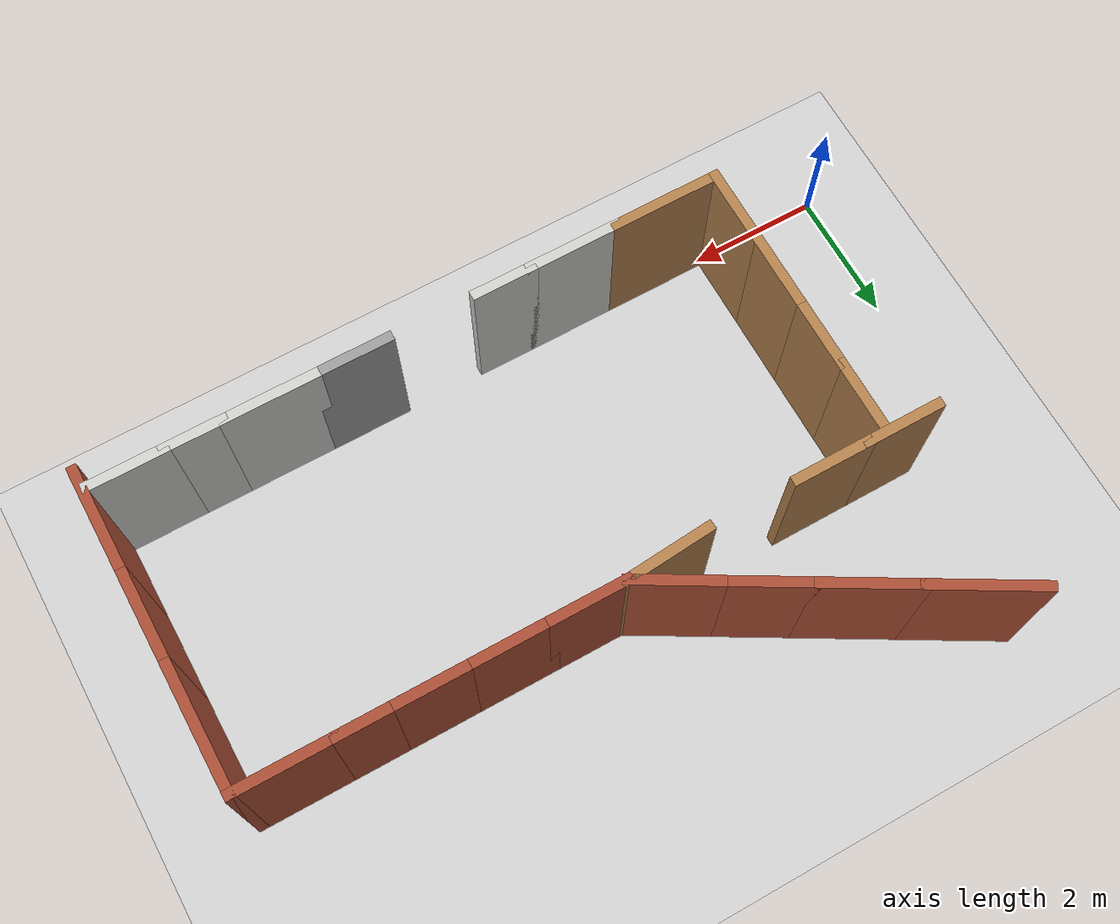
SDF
<sdf version="1.7">
 <world name="default">
  <model name="ground_plane">
   <static>1</static>
   <link name="link">
    <collision name="collision">
     <geometry><plane><normal>0 0 1</normal><size>100 100</size></plane></geometry>
     <surface>
      <contact><collide_bitmask>65535</collide_bitmask></contact>
      <friction><ode><mu>100</mu><mu2>50</mu2></ode></friction>
     </surface>
    </collision>
    <visual name="visual">
     <cast_shadows>0</cast_shadows>
     <geometry><plane><normal>0 0 1</normal><size>100 100</size></plane></geometry>
     <material>
      <script><uri>file://media/materials/scripts/gazebo.material</uri><name>Gazebo/Grey</name></script>
     </material>
    </visual>
   </link>
  </model>
  <model name="Building">
   <link name="Wall_100">
    <pose>10.6129 -0.475005 0 0 -0 0</pose>
    <visual name="Wall_100_Visual">
     <pose>0 0 1.25 0 -0 0</pose>
     <geometry><box><size>1.25 0.15 2.5</size></box></geometry>
     <material>
      <script><uri>file://media/materials/scripts/gazebo.material</uri><name>Gazebo/CeilingTiled</name></script>
      <ambient>1 1 1 1</ambient>
      <shader type="pixel"/>
     </material>
     <meta><layer>0</layer></meta>
    </visual>
    <collision name="Wall_100_Collision">
     <pose>0 0 1.25 0 -0 0</pose>
     <geometry><box><size>1.25 0.15 2.5</size></box></geometry>
     <surface>
      <friction>
       <ode><mu>1</mu><mu2>1</mu2><fdir1>0 0 0</fdir1><slip1>0</slip1><slip2>0</slip2></ode>
       <torsional>
        <coefficient>1</coefficient>
        <patch_radius>0</patch_radius>
        <surface_radius>0</surface_radius>
        <use_patch_radius>1</use_patch_radius>
        <ode><slip>0</slip></ode>
       </torsional>
      </friction>
      <bounce><restitution_coefficient>0</restitution_coefficient><threshold>1e+06</threshold></bounce>
      <contact>
       <collide_without_contact>0</collide_without_contact>
       <collide_without_contact_bitmask>1</collide_without_contact_bitmask>
       <collide_bitmask>1</collide_bitmask>
       <ode>
        <soft_cfm>0</soft_cfm>
        <soft_erp>0.2</soft_erp>
        <kp>1e+13</kp>
        <kd>1</kd>
        <max_vel>0.01</max_vel>
        <min_depth>0</min_depth>
       </ode>
       <bullet>
        <split_impulse>1</split_impulse>
        <split_impulse_penetration_threshold>-0.01</split_impulse_penetration_threshold>
        <soft_cfm>0</soft_cfm>
        <soft_erp>0.2</soft_erp>
        <kp>1e+13</kp>
        <kd>1</kd>
       </bullet>
      </contact>
     </surface>
    </collision>
   </link>
   <link name="Wall_11">
    <pose>11.2288 3.11127 0 0 0 -1.5708</pose>
    <visual name="Wall_11_Visual">
     <pose>0 0 1.25 0 -0 0</pose>
     <geometry><box><size>2 0.15 2.5</size></box></geometry>
     <material>
      <script><uri>file://media/materials/scripts/gazebo.material</uri><name>Gazebo/Bricks</name></script>
      <ambient>1 1 1 1</ambient>
      <shader type="pixel"/>
     </material>
     <meta><layer>0</layer></meta>
    </visual>
    <collision name="Wall_11_Collision">
     <pose>0 0 1.25 0 -0 0</pose>
     <geometry><box><size>2 0.15 2.5</size></box></geometry>
     <surface>
      <friction>
       <ode><mu>1</mu><mu2>1</mu2><fdir1>0 0 0</fdir1><slip1>0</slip1><slip2>0</slip2></ode>
       <torsional>
        <coefficient>1</coefficient>
        <patch_radius>0</patch_radius>
        <surface_radius>0</surface_radius>
        <use_patch_radius>1</use_patch_radius>
        <ode><slip>0</slip></ode>
       </torsional>
      </friction>
      <bounce><restitution_coefficient>0</restitution_coefficient><threshold>1e+06</threshold></bounce>
      <contact>
       <collide_without_contact>0</collide_without_contact>
       <collide_without_contact_bitmask>1</collide_without_contact_bitmask>
       <collide_bitmask>1</collide_bitmask>
       <ode>
        <soft_cfm>0</soft_cfm>
        <soft_erp>0.2</soft_erp>
        <kp>1e+13</kp>
        <kd>1</kd>
        <max_vel>0.01</max_vel>
        <min_depth>0</min_depth>
       </ode>
       <bullet>
        <split_impulse>1</split_impulse>
        <split_impulse_penetration_threshold>-0.01</split_impulse_penetration_threshold>
        <soft_cfm>0</soft_cfm>
        <soft_erp>0.2</soft_erp>
        <kp>1e+13</kp>
        <kd>1</kd>
       </bullet>
      </contact>
     </surface>
    </collision>
   </link>
   <link name="Wall_41">
    <pose>11.2288 1.51127 0 0 0 -1.5708</pose>
    <visual name="Wall_41_Visual">
     <pose>0 0 1.25 0 -0 0</pose>
     <geometry><box><size>1.5 0.15 2.5</size></box></geometry>
     <material>
      <script><uri>file://media/materials/scripts/gazebo.material</uri><name>Gazebo/Bricks</name></script>
      <ambient>1 1 1 1</ambient>
      <shader type="pixel"/>
     </material>
     <meta><layer>0</layer></meta>
    </visual>
    <collision name="Wall_41_Collision">
     <pose>0 0 1.25 0 -0 0</pose>
     <geometry><box><size>1.5 0.15 2.5</size></box></geometry>
     <surface>
      <friction>
       <ode><mu>1</mu><mu2>1</mu2><fdir1>0 0 0</fdir1><slip1>0</slip1><slip2>0</slip2></ode>
       <torsional>
        <coefficient>1</coefficient>
        <patch_radius>0</patch_radius>
        <surface_radius>0</surface_radius>
        <use_patch_radius>1</use_patch_radius>
        <ode><slip>0</slip></ode>
       </torsional>
      </friction>
      <bounce><restitution_coefficient>0</restitution_coefficient><threshold>1e+06</threshold></bounce>
      <contact>
       <collide_without_contact>0</collide_without_contact>
       <collide_without_contact_bitmask>1</collide_without_contact_bitmask>
       <collide_bitmask>1</collide_bitmask>
       <ode>
        <soft_cfm>0</soft_cfm>
        <soft_erp>0.2</soft_erp>
        <kp>1e+13</kp>
        <kd>1</kd>
        <max_vel>0.01</max_vel>
        <min_depth>0</min_depth>
       </ode>
       <bullet>
        <split_impulse>1</split_impulse>
        <split_impulse_penetration_threshold>-0.01</split_impulse_penetration_threshold>
        <soft_cfm>0</soft_cfm>
        <soft_erp>0.2</soft_erp>
        <kp>1e+13</kp>
        <kd>1</kd>
       </bullet>
      </contact>
     </surface>
    </collision>
   </link>
   <link name="Wall_42">
    <pose>11.2288 0.836274 0 0 -0 0</pose>
    <visual name="Wall_42_Visual">
     <pose>0 0 1.25 0 -0 0</pose>
     <geometry><box><size>0.15 0.15 2.5</size></box></geometry>
     <material>
      <script><uri>file://media/materials/scripts/gazebo.material</uri><name>Gazebo/Grey</name></script>
      <ambient>1 1 1 1</ambient>
      <shader type="pixel"/>
     </material>
     <meta><layer>0</layer></meta>
    </visual>
    <collision name="Wall_42_Collision">
     <pose>0 0 1.25 0 -0 0</pose>
     <geometry><box><size>0.15 0.15 2.5</size></box></geometry>
     <surface>
      <friction>
       <ode><mu>1</mu><mu2>1</mu2><fdir1>0 0 0</fdir1><slip1>0</slip1><slip2>0</slip2></ode>
       <torsional>
        <coefficient>1</coefficient>
        <patch_radius>0</patch_radius>
        <surface_radius>0</surface_radius>
        <use_patch_radius>1</use_patch_radius>
        <ode><slip>0</slip></ode>
       </torsional>
      </friction>
      <bounce><restitution_coefficient>0</restitution_coefficient><threshold>1e+06</threshold></bounce>
      <contact>
       <collide_without_contact>0</collide_without_contact>
       <collide_without_contact_bitmask>1</collide_without_contact_bitmask>
       <collide_bitmask>1</collide_bitmask>
       <ode>
        <soft_cfm>0</soft_cfm>
        <soft_erp>0.2</soft_erp>
        <kp>1e+13</kp>
        <kd>1</kd>
        <max_vel>0.01</max_vel>
        <min_depth>0</min_depth>
       </ode>
       <bullet>
        <split_impulse>1</split_impulse>
        <split_impulse_penetration_threshold>-0.01</split_impulse_penetration_threshold>
        <soft_cfm>0</soft_cfm>
        <soft_erp>0.2</soft_erp>
        <kp>1e+13</kp>
        <kd>1</kd>
       </bullet>
      </contact>
     </surface>
    </collision>
   </link>
   <link name="Wall_43">
    <pose>11.2288 0.036274 0 0 0 -1.5708</pose>
    <visual name="Wall_43_Visual">
     <pose>0 0 1.25 0 -0 0</pose>
     <geometry><box><size>1.75 0.15 2.5</size></box></geometry>
     <material>
      <script><uri>file://media/materials/scripts/gazebo.material</uri><name>Gazebo/Bricks</name></script>
      <ambient>1 1 1 1</ambient>
      <shader type="pixel"/>
     </material>
     <meta><layer>0</layer></meta>
    </visual>
    <collision name="Wall_43_Collision">
     <pose>0 0 1.25 0 -0 0</pose>
     <geometry><box><size>1.75 0.15 2.5</size></box></geometry>
     <surface>
      <friction>
       <ode><mu>1</mu><mu2>1</mu2><fdir1>0 0 0</fdir1><slip1>0</slip1><slip2>0</slip2></ode>
       <torsional>
        <coefficient>1</coefficient>
        <patch_radius>0</patch_radius>
        <surface_radius>0</surface_radius>
        <use_patch_radius>1</use_patch_radius>
        <ode><slip>0</slip></ode>
       </torsional>
      </friction>
      <bounce><restitution_coefficient>0</restitution_coefficient><threshold>1e+06</threshold></bounce>
      <contact>
       <collide_without_contact>0</collide_without_contact>
       <collide_without_contact_bitmask>1</collide_without_contact_bitmask>
       <collide_bitmask>1</collide_bitmask>
       <ode>
        <soft_cfm>0</soft_cfm>
        <soft_erp>0.2</soft_erp>
        <kp>1e+13</kp>
        <kd>1</kd>
        <max_vel>0.01</max_vel>
        <min_depth>0</min_depth>
       </ode>
       <bullet>
        <split_impulse>1</split_impulse>
        <split_impulse_penetration_threshold>-0.01</split_impulse_penetration_threshold>
        <soft_cfm>0</soft_cfm>
        <soft_erp>0.2</soft_erp>
        <kp>1e+13</kp>
        <kd>1</kd>
       </bullet>
      </contact>
     </surface>
    </collision>
   </link>
   <link name="Wall_67">
    <pose>1.64513 6.33627 0 0 0 -0.523599</pose>
    <visual name="Wall_67_Visual">
     <pose>0 0 1.25 0 -0 0</pose>
     <geometry><box><size>1.75 0.15 2.5</size></box></geometry>
     <material>
      <script><uri>file://media/materials/scripts/gazebo.material</uri><name>Gazebo/Bricks</name></script>
      <ambient>1 1 1 1</ambient>
      <shader type="pixel"/>
     </material>
     <meta><layer>0</layer></meta>
    </visual>
    <collision name="Wall_67_Collision">
     <pose>0 0 1.25 0 -0 0</pose>
     <geometry><box><size>1.75 0.15 2.5</size></box></geometry>
     <surface>
      <friction>
       <ode><mu>1</mu><mu2>1</mu2><fdir1>0 0 0</fdir1><slip1>0</slip1><slip2>0</slip2></ode>
       <torsional>
        <coefficient>1</coefficient>
        <patch_radius>0</patch_radius>
        <surface_radius>0</surface_radius>
        <use_patch_radius>1</use_patch_radius>
        <ode><slip>0</slip></ode>
       </torsional>
      </friction>
      <bounce><restitution_coefficient>0</restitution_coefficient><threshold>1e+06</threshold></bounce>
      <contact>
       <collide_without_contact>0</collide_without_contact>
       <collide_without_contact_bitmask>1</collide_without_contact_bitmask>
       <collide_bitmask>1</collide_bitmask>
       <ode>
        <soft_cfm>0</soft_cfm>
        <soft_erp>0.2</soft_erp>
        <kp>1e+13</kp>
        <kd>1</kd>
        <max_vel>0.01</max_vel>
        <min_depth>0</min_depth>
       </ode>
       <bullet>
        <split_impulse>1</split_impulse>
        <split_impulse_penetration_threshold>-0.01</split_impulse_penetration_threshold>
        <soft_cfm>0</soft_cfm>
        <soft_erp>0.2</soft_erp>
        <kp>1e+13</kp>
        <kd>1</kd>
       </bullet>
      </contact>
     </surface>
    </collision>
   </link>
   <link name="Wall_68">
    <pose>2.92252 5.59877 0 0 0 -0.523599</pose>
    <visual name="Wall_68_Visual">
     <pose>0 0 1.25 0 -0 0</pose>
     <geometry><box><size>1.5 0.15 2.5</size></box></geometry>
     <material>
      <script><uri>file://media/materials/scripts/gazebo.material</uri><name>Gazebo/Bricks</name></script>
      <ambient>1 1 1 1</ambient>
      <shader type="pixel"/>
     </material>
     <meta><layer>0</layer></meta>
    </visual>
    <collision name="Wall_68_Collision">
     <pose>0 0 1.25 0 -0 0</pose>
     <geometry><box><size>1.5 0.15 2.5</size></box></geometry>
     <surface>
      <friction>
       <ode><mu>1</mu><mu2>1</mu2><fdir1>0 0 0</fdir1><slip1>0</slip1><slip2>0</slip2></ode>
       <torsional>
        <coefficient>1</coefficient>
        <patch_radius>0</patch_radius>
        <surface_radius>0</surface_radius>
        <use_patch_radius>1</use_patch_radius>
        <ode><slip>0</slip></ode>
       </torsional>
      </friction>
      <bounce><restitution_coefficient>0</restitution_coefficient><threshold>1e+06</threshold></bounce>
      <contact>
       <collide_without_contact>0</collide_without_contact>
       <collide_without_contact_bitmask>1</collide_without_contact_bitmask>
       <collide_bitmask>1</collide_bitmask>
       <ode>
        <soft_cfm>0</soft_cfm>
        <soft_erp>0.2</soft_erp>
        <kp>1e+13</kp>
        <kd>1</kd>
        <max_vel>0.01</max_vel>
        <min_depth>0</min_depth>
       </ode>
       <bullet>
        <split_impulse>1</split_impulse>
        <split_impulse_penetration_threshold>-0.01</split_impulse_penetration_threshold>
        <soft_cfm>0</soft_cfm>
        <soft_erp>0.2</soft_erp>
        <kp>1e+13</kp>
        <kd>1</kd>
       </bullet>
      </contact>
     </surface>
    </collision>
   </link>
   <link name="Wall_69">
    <pose>3.9834 4.98627 0 0 0 -0.523599</pose>
    <visual name="Wall_69_Visual">
     <pose>0 0 1.25 0 -0 0</pose>
     <geometry><box><size>1.25 0.15 2.5</size></box></geometry>
     <material>
      <script><uri>file://media/materials/scripts/gazebo.material</uri><name>Gazebo/Bricks</name></script>
      <ambient>1 1 1 1</ambient>
      <shader type="pixel"/>
     </material>
     <meta><layer>0</layer></meta>
    </visual>
    <collision name="Wall_69_Collision">
     <pose>0 0 1.25 0 -0 0</pose>
     <geometry><box><size>1.25 0.15 2.5</size></box></geometry>
     <surface>
      <friction>
       <ode><mu>1</mu><mu2>1</mu2><fdir1>0 0 0</fdir1><slip1>0</slip1><slip2>0</slip2></ode>
       <torsional>
        <coefficient>1</coefficient>
        <patch_radius>0</patch_radius>
        <surface_radius>0</surface_radius>
        <use_patch_radius>1</use_patch_radius>
        <ode><slip>0</slip></ode>
       </torsional>
      </friction>
      <bounce><restitution_coefficient>0</restitution_coefficient><threshold>1e+06</threshold></bounce>
      <contact>
       <collide_without_contact>0</collide_without_contact>
       <collide_without_contact_bitmask>1</collide_without_contact_bitmask>
       <collide_bitmask>1</collide_bitmask>
       <ode>
        <soft_cfm>0</soft_cfm>
        <soft_erp>0.2</soft_erp>
        <kp>1e+13</kp>
        <kd>1</kd>
        <max_vel>0.01</max_vel>
        <min_depth>0</min_depth>
       </ode>
       <bullet>
        <split_impulse>1</split_impulse>
        <split_impulse_penetration_threshold>-0.01</split_impulse_penetration_threshold>
        <soft_cfm>0</soft_cfm>
        <soft_erp>0.2</soft_erp>
        <kp>1e+13</kp>
        <kd>1</kd>
       </bullet>
      </contact>
     </surface>
    </collision>
   </link>
   <link name="Wall_70">
    <pose>5.04428 4.37377 0 0 0 -0.523599</pose>
    <visual name="Wall_70_Visual">
     <pose>0 0 1.25 0 -0 0</pose>
     <geometry><box><size>1.5 0.15 2.5</size></box></geometry>
     <material>
      <script><uri>file://media/materials/scripts/gazebo.material</uri><name>Gazebo/Bricks</name></script>
      <ambient>1 1 1 1</ambient>
      <shader type="pixel"/>
     </material>
     <meta><layer>0</layer></meta>
    </visual>
    <collision name="Wall_70_Collision">
     <pose>0 0 1.25 0 -0 0</pose>
     <geometry><box><size>1.5 0.15 2.5</size></box></geometry>
     <surface>
      <friction>
       <ode><mu>1</mu><mu2>1</mu2><fdir1>0 0 0</fdir1><slip1>0</slip1><slip2>0</slip2></ode>
       <torsional>
        <coefficient>1</coefficient>
        <patch_radius>0</patch_radius>
        <surface_radius>0</surface_radius>
        <use_patch_radius>1</use_patch_radius>
        <ode><slip>0</slip></ode>
       </torsional>
      </friction>
      <bounce><restitution_coefficient>0</restitution_coefficient><threshold>1e+06</threshold></bounce>
      <contact>
       <collide_without_contact>0</collide_without_contact>
       <collide_without_contact_bitmask>1</collide_without_contact_bitmask>
       <collide_bitmask>1</collide_bitmask>
       <ode>
        <soft_cfm>0</soft_cfm>
        <soft_erp>0.2</soft_erp>
        <kp>1e+13</kp>
        <kd>1</kd>
        <max_vel>0.01</max_vel>
        <min_depth>0</min_depth>
       </ode>
       <bullet>
        <split_impulse>1</split_impulse>
        <split_impulse_penetration_threshold>-0.01</split_impulse_penetration_threshold>
        <soft_cfm>0</soft_cfm>
        <soft_erp>0.2</soft_erp>
        <kp>1e+13</kp>
        <kd>1</kd>
       </bullet>
      </contact>
     </surface>
    </collision>
   </link>
   <link name="Wall_72">
    <pose>6.17885 4.03627 0 0 -0 0</pose>
    <visual name="Wall_72_Visual">
     <pose>0 0 1.25 0 -0 0</pose>
     <geometry><box><size>1.25 0.15 2.5</size></box></geometry>
     <material>
      <script><uri>file://media/materials/scripts/gazebo.material</uri><name>Gazebo/Bricks</name></script>
      <ambient>1 1 1 1</ambient>
      <shader type="pixel"/>
     </material>
     <meta><layer>0</layer></meta>
    </visual>
    <collision name="Wall_72_Collision">
     <pose>0 0 1.25 0 -0 0</pose>
     <geometry><box><size>1.25 0.15 2.5</size></box></geometry>
     <surface>
      <friction>
       <ode><mu>1</mu><mu2>1</mu2><fdir1>0 0 0</fdir1><slip1>0</slip1><slip2>0</slip2></ode>
       <torsional>
        <coefficient>1</coefficient>
        <patch_radius>0</patch_radius>
        <surface_radius>0</surface_radius>
        <use_patch_radius>1</use_patch_radius>
        <ode><slip>0</slip></ode>
       </torsional>
      </friction>
      <bounce><restitution_coefficient>0</restitution_coefficient><threshold>1e+06</threshold></bounce>
      <contact>
       <collide_without_contact>0</collide_without_contact>
       <collide_without_contact_bitmask>1</collide_without_contact_bitmask>
       <collide_bitmask>1</collide_bitmask>
       <ode>
        <soft_cfm>0</soft_cfm>
        <soft_erp>0.2</soft_erp>
        <kp>1e+13</kp>
        <kd>1</kd>
        <max_vel>0.01</max_vel>
        <min_depth>0</min_depth>
       </ode>
       <bullet>
        <split_impulse>1</split_impulse>
        <split_impulse_penetration_threshold>-0.01</split_impulse_penetration_threshold>
        <soft_cfm>0</soft_cfm>
        <soft_erp>0.2</soft_erp>
        <kp>1e+13</kp>
        <kd>1</kd>
       </bullet>
      </contact>
     </surface>
    </collision>
   </link>
   <link name="Wall_73">
    <pose>7.27885 4.03627 0 0 -0 0</pose>
    <visual name="Wall_73_Visual">
     <pose>0 0 1.25 0 -0 0</pose>
     <geometry><box><size>1.25 0.15 2.5</size></box></geometry>
     <material>
      <script><uri>file://media/materials/scripts/gazebo.material</uri><name>Gazebo/Bricks</name></script>
      <ambient>1 1 1 1</ambient>
      <shader type="pixel"/>
     </material>
     <meta><layer>0</layer></meta>
    </visual>
    <collision name="Wall_73_Collision">
     <pose>0 0 1.25 0 -0 0</pose>
     <geometry><box><size>1.25 0.15 2.5</size></box></geometry>
     <surface>
      <friction>
       <ode><mu>1</mu><mu2>1</mu2><fdir1>0 0 0</fdir1><slip1>0</slip1><slip2>0</slip2></ode>
       <torsional>
        <coefficient>1</coefficient>
        <patch_radius>0</patch_radius>
        <surface_radius>0</surface_radius>
        <use_patch_radius>1</use_patch_radius>
        <ode><slip>0</slip></ode>
       </torsional>
      </friction>
      <bounce><restitution_coefficient>0</restitution_coefficient><threshold>1e+06</threshold></bounce>
      <contact>
       <collide_without_contact>0</collide_without_contact>
       <collide_without_contact_bitmask>1</collide_without_contact_bitmask>
       <collide_bitmask>1</collide_bitmask>
       <ode>
        <soft_cfm>0</soft_cfm>
        <soft_erp>0.2</soft_erp>
        <kp>1e+13</kp>
        <kd>1</kd>
        <max_vel>0.01</max_vel>
        <min_depth>0</min_depth>
       </ode>
       <bullet>
        <split_impulse>1</split_impulse>
        <split_impulse_penetration_threshold>-0.01</split_impulse_penetration_threshold>
        <soft_cfm>0</soft_cfm>
        <soft_erp>0.2</soft_erp>
        <kp>1e+13</kp>
        <kd>1</kd>
       </bullet>
      </contact>
     </surface>
    </collision>
   </link>
   <link name="Wall_74">
    <pose>8.37885 4.03627 0 0 -0 0</pose>
    <visual name="Wall_74_Visual">
     <pose>0 0 1.25 0 -0 0</pose>
     <geometry><box><size>1.25 0.15 2.5</size></box></geometry>
     <material>
      <script><uri>file://media/materials/scripts/gazebo.material</uri><name>Gazebo/Bricks</name></script>
      <ambient>1 1 1 1</ambient>
      <shader type="pixel"/>
     </material>
     <meta><layer>0</layer></meta>
    </visual>
    <collision name="Wall_74_Collision">
     <pose>0 0 1.25 0 -0 0</pose>
     <geometry><box><size>1.25 0.15 2.5</size></box></geometry>
     <surface>
      <friction>
       <ode><mu>1</mu><mu2>1</mu2><fdir1>0 0 0</fdir1><slip1>0</slip1><slip2>0</slip2></ode>
       <torsional>
        <coefficient>1</coefficient>
        <patch_radius>0</patch_radius>
        <surface_radius>0</surface_radius>
        <use_patch_radius>1</use_patch_radius>
        <ode><slip>0</slip></ode>
       </torsional>
      </friction>
      <bounce><restitution_coefficient>0</restitution_coefficient><threshold>1e+06</threshold></bounce>
      <contact>
       <collide_without_contact>0</collide_without_contact>
       <collide_without_contact_bitmask>1</collide_without_contact_bitmask>
       <collide_bitmask>1</collide_bitmask>
       <ode>
        <soft_cfm>0</soft_cfm>
        <soft_erp>0.2</soft_erp>
        <kp>1e+13</kp>
        <kd>1</kd>
        <max_vel>0.01</max_vel>
        <min_depth>0</min_depth>
       </ode>
       <bullet>
        <split_impulse>1</split_impulse>
        <split_impulse_penetration_threshold>-0.01</split_impulse_penetration_threshold>
        <soft_cfm>0</soft_cfm>
        <soft_erp>0.2</soft_erp>
        <kp>1e+13</kp>
        <kd>1</kd>
       </bullet>
      </contact>
     </surface>
    </collision>
   </link>
   <link name="Wall_75">
    <pose>9.35385 4.03627 0 0 -0 0</pose>
    <visual name="Wall_75_Visual">
     <pose>0 0 1.25 0 -0 0</pose>
     <geometry><box><size>1 0.15 2.5</size></box></geometry>
     <material>
      <script><uri>file://media/materials/scripts/gazebo.material</uri><name>Gazebo/Bricks</name></script>
      <ambient>1 1 1 1</ambient>
      <shader type="pixel"/>
     </material>
     <meta><layer>0</layer></meta>
    </visual>
    <collision name="Wall_75_Collision">
     <pose>0 0 1.25 0 -0 0</pose>
     <geometry><box><size>1 0.15 2.5</size></box></geometry>
     <surface>
      <friction>
       <ode><mu>1</mu><mu2>1</mu2><fdir1>0 0 0</fdir1><slip1>0</slip1><slip2>0</slip2></ode>
       <torsional>
        <coefficient>1</coefficient>
        <patch_radius>0</patch_radius>
        <surface_radius>0</surface_radius>
        <use_patch_radius>1</use_patch_radius>
        <ode><slip>0</slip></ode>
       </torsional>
      </friction>
      <bounce><restitution_coefficient>0</restitution_coefficient><threshold>1e+06</threshold></bounce>
      <contact>
       <collide_without_contact>0</collide_without_contact>
       <collide_without_contact_bitmask>1</collide_without_contact_bitmask>
       <collide_bitmask>1</collide_bitmask>
       <ode>
        <soft_cfm>0</soft_cfm>
        <soft_erp>0.2</soft_erp>
        <kp>1e+13</kp>
        <kd>1</kd>
        <max_vel>0.01</max_vel>
        <min_depth>0</min_depth>
       </ode>
       <bullet>
        <split_impulse>1</split_impulse>
        <split_impulse_penetration_threshold>-0.01</split_impulse_penetration_threshold>
        <soft_cfm>0</soft_cfm>
        <soft_erp>0.2</soft_erp>
        <kp>1e+13</kp>
        <kd>1</kd>
       </bullet>
      </contact>
     </surface>
    </collision>
   </link>
   <link name="Wall_76">
    <pose>10.5038 4.03627 0 0 -0 0</pose>
    <visual name="Wall_76_Visual">
     <pose>0 0 1.25 0 -0 0</pose>
     <geometry><box><size>1.6 0.15 2.5</size></box></geometry>
     <material>
      <script><uri>file://media/materials/scripts/gazebo.material</uri><name>Gazebo/Bricks</name></script>
      <ambient>1 1 1 1</ambient>
      <shader type="pixel"/>
     </material>
     <meta><layer>0</layer></meta>
    </visual>
    <collision name="Wall_76_Collision">
     <pose>0 0 1.25 0 -0 0</pose>
     <geometry><box><size>1.6 0.15 2.5</size></box></geometry>
     <surface>
      <friction>
       <ode><mu>1</mu><mu2>1</mu2><fdir1>0 0 0</fdir1><slip1>0</slip1><slip2>0</slip2></ode>
       <torsional>
        <coefficient>1</coefficient>
        <patch_radius>0</patch_radius>
        <surface_radius>0</surface_radius>
        <use_patch_radius>1</use_patch_radius>
        <ode><slip>0</slip></ode>
       </torsional>
      </friction>
      <bounce><restitution_coefficient>0</restitution_coefficient><threshold>1e+06</threshold></bounce>
      <contact>
       <collide_without_contact>0</collide_without_contact>
       <collide_without_contact_bitmask>1</collide_without_contact_bitmask>
       <collide_bitmask>1</collide_bitmask>
       <ode>
        <soft_cfm>0</soft_cfm>
        <soft_erp>0.2</soft_erp>
        <kp>1e+13</kp>
        <kd>1</kd>
        <max_vel>0.01</max_vel>
        <min_depth>0</min_depth>
       </ode>
       <bullet>
        <split_impulse>1</split_impulse>
        <split_impulse_penetration_threshold>-0.01</split_impulse_penetration_threshold>
        <soft_cfm>0</soft_cfm>
        <soft_erp>0.2</soft_erp>
        <kp>1e+13</kp>
        <kd>1</kd>
       </bullet>
      </contact>
     </surface>
    </collision>
   </link>
   <link name="Wall_84">
    <pose>1.36404 3.93627 0 0 -0 0</pose>
    <visual name="Wall_84_Visual">
     <pose>0 0 1.25 0 -0 0</pose>
     <geometry><box><size>1.25 0.15 2.5</size></box></geometry>
     <material>
      <script><uri>file://media/materials/scripts/gazebo.material</uri><name>Gazebo/Wood</name></script>
      <ambient>1 1 1 1</ambient>
      <shader type="pixel"/>
     </material>
     <meta><layer>0</layer></meta>
    </visual>
    <collision name="Wall_84_Collision">
     <pose>0 0 1.25 0 -0 0</pose>
     <geometry><box><size>1.25 0.15 2.5</size></box></geometry>
     <surface>
      <friction>
       <ode><mu>1</mu><mu2>1</mu2><fdir1>0 0 0</fdir1><slip1>0</slip1><slip2>0</slip2></ode>
       <torsional>
        <coefficient>1</coefficient>
        <patch_radius>0</patch_radius>
        <surface_radius>0</surface_radius>
        <use_patch_radius>1</use_patch_radius>
        <ode><slip>0</slip></ode>
       </torsional>
      </friction>
      <bounce><restitution_coefficient>0</restitution_coefficient><threshold>1e+06</threshold></bounce>
      <contact>
       <collide_without_contact>0</collide_without_contact>
       <collide_without_contact_bitmask>1</collide_without_contact_bitmask>
       <collide_bitmask>1</collide_bitmask>
       <ode>
        <soft_cfm>0</soft_cfm>
        <soft_erp>0.2</soft_erp>
        <kp>1e+13</kp>
        <kd>1</kd>
        <max_vel>0.01</max_vel>
        <min_depth>0</min_depth>
       </ode>
       <bullet>
        <split_impulse>1</split_impulse>
        <split_impulse_penetration_threshold>-0.01</split_impulse_penetration_threshold>
        <soft_cfm>0</soft_cfm>
        <soft_erp>0.2</soft_erp>
        <kp>1e+13</kp>
        <kd>1</kd>
       </bullet>
      </contact>
     </surface>
    </collision>
   </link>
   <link name="Wall_85">
    <pose>2.46404 3.93627 0 0 -0 0</pose>
    <visual name="Wall_85_Visual">
     <pose>0 0 1.25 0 -0 0</pose>
     <geometry><box><size>1.25 0.15 2.5</size></box></geometry>
     <material>
      <script><uri>file://media/materials/scripts/gazebo.material</uri><name>Gazebo/Wood</name></script>
      <ambient>1 1 1 1</ambient>
      <shader type="pixel"/>
     </material>
     <meta><layer>0</layer></meta>
    </visual>
    <collision name="Wall_85_Collision">
     <pose>0 0 1.25 0 -0 0</pose>
     <geometry><box><size>1.25 0.15 2.5</size></box></geometry>
     <surface>
      <friction>
       <ode><mu>1</mu><mu2>1</mu2><fdir1>0 0 0</fdir1><slip1>0</slip1><slip2>0</slip2></ode>
       <torsional>
        <coefficient>1</coefficient>
        <patch_radius>0</patch_radius>
        <surface_radius>0</surface_radius>
        <use_patch_radius>1</use_patch_radius>
        <ode><slip>0</slip></ode>
       </torsional>
      </friction>
      <bounce><restitution_coefficient>0</restitution_coefficient><threshold>1e+06</threshold></bounce>
      <contact>
       <collide_without_contact>0</collide_without_contact>
       <collide_without_contact_bitmask>1</collide_without_contact_bitmask>
       <collide_bitmask>1</collide_bitmask>
       <ode>
        <soft_cfm>0</soft_cfm>
        <soft_erp>0.2</soft_erp>
        <kp>1e+13</kp>
        <kd>1</kd>
        <max_vel>0.01</max_vel>
        <min_depth>0</min_depth>
       </ode>
       <bullet>
        <split_impulse>1</split_impulse>
        <split_impulse_penetration_threshold>-0.01</split_impulse_penetration_threshold>
        <soft_cfm>0</soft_cfm>
        <soft_erp>0.2</soft_erp>
        <kp>1e+13</kp>
        <kd>1</kd>
       </bullet>
      </contact>
     </surface>
    </collision>
   </link>
   <link name="Wall_87">
    <pose>4.99645 3.98627 0 0 -0 0.078899</pose>
    <visual name="Wall_87_Visual">
     <pose>0 0 1.25 0 -0 0</pose>
     <geometry><box><size>1.41875 0.15 2.5</size></box></geometry>
     <material>
      <script><uri>file://media/materials/scripts/gazebo.material</uri><name>Gazebo/Wood</name></script>
      <ambient>1 1 1 1</ambient>
      <shader type="pixel"/>
     </material>
     <meta><layer>0</layer></meta>
    </visual>
    <collision name="Wall_87_Collision">
     <pose>0 0 1.25 0 -0 0</pose>
     <geometry><box><size>1.41875 0.15 2.5</size></box></geometry>
     <surface>
      <friction>
       <ode><mu>1</mu><mu2>1</mu2><fdir1>0 0 0</fdir1><slip1>0</slip1><slip2>0</slip2></ode>
       <torsional>
        <coefficient>1</coefficient>
        <patch_radius>0</patch_radius>
        <surface_radius>0</surface_radius>
        <use_patch_radius>1</use_patch_radius>
        <ode><slip>0</slip></ode>
       </torsional>
      </friction>
      <bounce><restitution_coefficient>0</restitution_coefficient><threshold>1e+06</threshold></bounce>
      <contact>
       <collide_without_contact>0</collide_without_contact>
       <collide_without_contact_bitmask>1</collide_without_contact_bitmask>
       <collide_bitmask>1</collide_bitmask>
       <ode>
        <soft_cfm>0</soft_cfm>
        <soft_erp>0.2</soft_erp>
        <kp>1e+13</kp>
        <kd>1</kd>
        <max_vel>0.01</max_vel>
        <min_depth>0</min_depth>
       </ode>
       <bullet>
        <split_impulse>1</split_impulse>
        <split_impulse_penetration_threshold>-0.01</split_impulse_penetration_threshold>
        <soft_cfm>0</soft_cfm>
        <soft_erp>0.2</soft_erp>
        <kp>1e+13</kp>
        <kd>1</kd>
       </bullet>
      </contact>
     </surface>
    </collision>
   </link>
   <link name="Wall_89">
    <pose>1.61287 3.375 0 0 0 -1.5708</pose>
    <visual name="Wall_89_Visual">
     <pose>0 0 1.25 0 -0 0</pose>
     <geometry><box><size>1.25 0.15 2.5</size></box></geometry>
     <material>
      <script><uri>file://media/materials/scripts/gazebo.material</uri><name>Gazebo/Wood</name></script>
      <ambient>1 1 1 1</ambient>
      <shader type="pixel"/>
     </material>
     <meta><layer>0</layer></meta>
    </visual>
    <collision name="Wall_89_Collision">
     <pose>0 0 1.25 0 -0 0</pose>
     <geometry><box><size>1.25 0.15 2.5</size></box></geometry>
     <surface>
      <friction>
       <ode><mu>1</mu><mu2>1</mu2><fdir1>0 0 0</fdir1><slip1>0</slip1><slip2>0</slip2></ode>
       <torsional>
        <coefficient>1</coefficient>
        <patch_radius>0</patch_radius>
        <surface_radius>0</surface_radius>
        <use_patch_radius>1</use_patch_radius>
        <ode><slip>0</slip></ode>
       </torsional>
      </friction>
      <bounce><restitution_coefficient>0</restitution_coefficient><threshold>1e+06</threshold></bounce>
      <contact>
       <collide_without_contact>0</collide_without_contact>
       <collide_without_contact_bitmask>1</collide_without_contact_bitmask>
       <collide_bitmask>1</collide_bitmask>
       <ode>
        <soft_cfm>0</soft_cfm>
        <soft_erp>0.2</soft_erp>
        <kp>1e+13</kp>
        <kd>1</kd>
        <max_vel>0.01</max_vel>
        <min_depth>0</min_depth>
       </ode>
       <bullet>
        <split_impulse>1</split_impulse>
        <split_impulse_penetration_threshold>-0.01</split_impulse_penetration_threshold>
        <soft_cfm>0</soft_cfm>
        <soft_erp>0.2</soft_erp>
        <kp>1e+13</kp>
        <kd>1</kd>
       </bullet>
      </contact>
     </surface>
    </collision>
   </link>
   <link name="Wall_90">
    <pose>1.61287 2.275 0 0 0 -1.5708</pose>
    <visual name="Wall_90_Visual">
     <pose>0 0 1.25 0 -0 0</pose>
     <geometry><box><size>1.25 0.15 2.5</size></box></geometry>
     <material>
      <script><uri>file://media/materials/scripts/gazebo.material</uri><name>Gazebo/Wood</name></script>
      <ambient>1 1 1 1</ambient>
      <shader type="pixel"/>
     </material>
     <meta><layer>0</layer></meta>
    </visual>
    <collision name="Wall_90_Collision">
     <pose>0 0 1.25 0 -0 0</pose>
     <geometry><box><size>1.25 0.15 2.5</size></box></geometry>
     <surface>
      <friction>
       <ode><mu>1</mu><mu2>1</mu2><fdir1>0 0 0</fdir1><slip1>0</slip1><slip2>0</slip2></ode>
       <torsional>
        <coefficient>1</coefficient>
        <patch_radius>0</patch_radius>
        <surface_radius>0</surface_radius>
        <use_patch_radius>1</use_patch_radius>
        <ode><slip>0</slip></ode>
       </torsional>
      </friction>
      <bounce><restitution_coefficient>0</restitution_coefficient><threshold>1e+06</threshold></bounce>
      <contact>
       <collide_without_contact>0</collide_without_contact>
       <collide_without_contact_bitmask>1</collide_without_contact_bitmask>
       <collide_bitmask>1</collide_bitmask>
       <ode>
        <soft_cfm>0</soft_cfm>
        <soft_erp>0.2</soft_erp>
        <kp>1e+13</kp>
        <kd>1</kd>
        <max_vel>0.01</max_vel>
        <min_depth>0</min_depth>
       </ode>
       <bullet>
        <split_impulse>1</split_impulse>
        <split_impulse_penetration_threshold>-0.01</split_impulse_penetration_threshold>
        <soft_cfm>0</soft_cfm>
        <soft_erp>0.2</soft_erp>
        <kp>1e+13</kp>
        <kd>1</kd>
       </bullet>
      </contact>
     </surface>
    </collision>
   </link>
   <link name="Wall_91">
    <pose>1.61287 1.175 0 0 0 -1.5708</pose>
    <visual name="Wall_91_Visual">
     <pose>0 0 1.25 0 -0 0</pose>
     <geometry><box><size>1.25 0.15 2.5</size></box></geometry>
     <material>
      <script><uri>file://media/materials/scripts/gazebo.material</uri><name>Gazebo/Wood</name></script>
      <ambient>1 1 1 1</ambient>
      <shader type="pixel"/>
     </material>
     <meta><layer>0</layer></meta>
    </visual>
    <collision name="Wall_91_Collision">
     <pose>0 0 1.25 0 -0 0</pose>
     <geometry><box><size>1.25 0.15 2.5</size></box></geometry>
     <surface>
      <friction>
       <ode><mu>1</mu><mu2>1</mu2><fdir1>0 0 0</fdir1><slip1>0</slip1><slip2>0</slip2></ode>
       <torsional>
        <coefficient>1</coefficient>
        <patch_radius>0</patch_radius>
        <surface_radius>0</surface_radius>
        <use_patch_radius>1</use_patch_radius>
        <ode><slip>0</slip></ode>
       </torsional>
      </friction>
      <bounce><restitution_coefficient>0</restitution_coefficient><threshold>1e+06</threshold></bounce>
      <contact>
       <collide_without_contact>0</collide_without_contact>
       <collide_without_contact_bitmask>1</collide_without_contact_bitmask>
       <collide_bitmask>1</collide_bitmask>
       <ode>
        <soft_cfm>0</soft_cfm>
        <soft_erp>0.2</soft_erp>
        <kp>1e+13</kp>
        <kd>1</kd>
        <max_vel>0.01</max_vel>
        <min_depth>0</min_depth>
       </ode>
       <bullet>
        <split_impulse>1</split_impulse>
        <split_impulse_penetration_threshold>-0.01</split_impulse_penetration_threshold>
        <soft_cfm>0</soft_cfm>
        <soft_erp>0.2</soft_erp>
        <kp>1e+13</kp>
        <kd>1</kd>
       </bullet>
      </contact>
     </surface>
    </collision>
   </link>
   <link name="Wall_92">
    <pose>1.61287 0.074995 0 0 0 -1.5708</pose>
    <visual name="Wall_92_Visual">
     <pose>0 0 1.25 0 -0 0</pose>
     <geometry><box><size>1.25 0.15 2.5</size></box></geometry>
     <material>
      <script><uri>file://media/materials/scripts/gazebo.material</uri><name>Gazebo/Wood</name></script>
      <ambient>1 1 1 1</ambient>
      <shader type="pixel"/>
     </material>
     <meta><layer>0</layer></meta>
    </visual>
    <collision name="Wall_92_Collision">
     <pose>0 0 1.25 0 -0 0</pose>
     <geometry><box><size>1.25 0.15 2.5</size></box></geometry>
     <surface>
      <friction>
       <ode><mu>1</mu><mu2>1</mu2><fdir1>0 0 0</fdir1><slip1>0</slip1><slip2>0</slip2></ode>
       <torsional>
        <coefficient>1</coefficient>
        <patch_radius>0</patch_radius>
        <surface_radius>0</surface_radius>
        <use_patch_radius>1</use_patch_radius>
        <ode><slip>0</slip></ode>
       </torsional>
      </friction>
      <bounce><restitution_coefficient>0</restitution_coefficient><threshold>1e+06</threshold></bounce>
      <contact>
       <collide_without_contact>0</collide_without_contact>
       <collide_without_contact_bitmask>1</collide_without_contact_bitmask>
       <collide_bitmask>1</collide_bitmask>
       <ode>
        <soft_cfm>0</soft_cfm>
        <soft_erp>0.2</soft_erp>
        <kp>1e+13</kp>
        <kd>1</kd>
        <max_vel>0.01</max_vel>
        <min_depth>0</min_depth>
       </ode>
       <bullet>
        <split_impulse>1</split_impulse>
        <split_impulse_penetration_threshold>-0.01</split_impulse_penetration_threshold>
        <soft_cfm>0</soft_cfm>
        <soft_erp>0.2</soft_erp>
        <kp>1e+13</kp>
        <kd>1</kd>
       </bullet>
      </contact>
     </surface>
    </collision>
   </link>
   <link name="Wall_93">
    <pose>2.41287 -0.475005 0 0 -0 0</pose>
    <visual name="Wall_93_Visual">
     <pose>0 0 1.25 0 -0 0</pose>
     <geometry><box><size>1.75 0.15 2.5</size></box></geometry>
     <material>
      <script><uri>file://media/materials/scripts/gazebo.material</uri><name>Gazebo/Wood</name></script>
      <ambient>1 1 1 1</ambient>
      <shader type="pixel"/>
     </material>
     <meta><layer>0</layer></meta>
    </visual>
    <collision name="Wall_93_Collision">
     <pose>0 0 1.25 0 -0 0</pose>
     <geometry><box><size>1.75 0.15 2.5</size></box></geometry>
     <surface>
      <friction>
       <ode><mu>1</mu><mu2>1</mu2><fdir1>0 0 0</fdir1><slip1>0</slip1><slip2>0</slip2></ode>
       <torsional>
        <coefficient>1</coefficient>
        <patch_radius>0</patch_radius>
        <surface_radius>0</surface_radius>
        <use_patch_radius>1</use_patch_radius>
        <ode><slip>0</slip></ode>
       </torsional>
      </friction>
      <bounce><restitution_coefficient>0</restitution_coefficient><threshold>1e+06</threshold></bounce>
      <contact>
       <collide_without_contact>0</collide_without_contact>
       <collide_without_contact_bitmask>1</collide_without_contact_bitmask>
       <collide_bitmask>1</collide_bitmask>
       <ode>
        <soft_cfm>0</soft_cfm>
        <soft_erp>0.2</soft_erp>
        <kp>1e+13</kp>
        <kd>1</kd>
        <max_vel>0.01</max_vel>
        <min_depth>0</min_depth>
       </ode>
       <bullet>
        <split_impulse>1</split_impulse>
        <split_impulse_penetration_threshold>-0.01</split_impulse_penetration_threshold>
        <soft_cfm>0</soft_cfm>
        <soft_erp>0.2</soft_erp>
        <kp>1e+13</kp>
        <kd>1</kd>
       </bullet>
      </contact>
     </surface>
    </collision>
   </link>
   <link name="Wall_94">
    <pose>3.88787 -0.475005 0 0 -0 0</pose>
    <visual name="Wall_94_Visual">
     <pose>0 0 1.25 0 -0 0</pose>
     <geometry><box><size>1.5 0.15 2.5</size></box></geometry>
     <material>
      <script><uri>file://media/materials/scripts/gazebo.material</uri><name>Gazebo/CeilingTiled</name></script>
      <ambient>1 1 1 1</ambient>
      <shader type="pixel"/>
     </material>
     <meta><layer>0</layer></meta>
    </visual>
    <collision name="Wall_94_Collision">
     <pose>0 0 1.25 0 -0 0</pose>
     <geometry><box><size>1.5 0.15 2.5</size></box></geometry>
     <surface>
      <friction>
       <ode><mu>1</mu><mu2>1</mu2><fdir1>0 0 0</fdir1><slip1>0</slip1><slip2>0</slip2></ode>
       <torsional>
        <coefficient>1</coefficient>
        <patch_radius>0</patch_radius>
        <surface_radius>0</surface_radius>
        <use_patch_radius>1</use_patch_radius>
        <ode><slip>0</slip></ode>
       </torsional>
      </friction>
      <bounce><restitution_coefficient>0</restitution_coefficient><threshold>1e+06</threshold></bounce>
      <contact>
       <collide_without_contact>0</collide_without_contact>
       <collide_without_contact_bitmask>1</collide_without_contact_bitmask>
       <collide_bitmask>1</collide_bitmask>
       <ode>
        <soft_cfm>0</soft_cfm>
        <soft_erp>0.2</soft_erp>
        <kp>1e+13</kp>
        <kd>1</kd>
        <max_vel>0.01</max_vel>
        <min_depth>0</min_depth>
       </ode>
       <bullet>
        <split_impulse>1</split_impulse>
        <split_impulse_penetration_threshold>-0.01</split_impulse_penetration_threshold>
        <soft_cfm>0</soft_cfm>
        <soft_erp>0.2</soft_erp>
        <kp>1e+13</kp>
        <kd>1</kd>
       </bullet>
      </contact>
     </surface>
    </collision>
   </link>
   <link name="Wall_95">
    <pose>4.98787 -0.475005 0 0 -0 0</pose>
    <visual name="Wall_95_Visual">
     <pose>0 0 1.25 0 -0 0</pose>
     <geometry><box><size>1 0.15 2.5</size></box></geometry>
     <material>
      <script><uri>file://media/materials/scripts/gazebo.material</uri><name>Gazebo/CeilingTiled</name></script>
      <ambient>1 1 1 1</ambient>
      <shader type="pixel"/>
     </material>
     <meta><layer>0</layer></meta>
    </visual>
    <collision name="Wall_95_Collision">
     <pose>0 0 1.25 0 -0 0</pose>
     <geometry><box><size>1 0.15 2.5</size></box></geometry>
     <surface>
      <friction>
       <ode><mu>1</mu><mu2>1</mu2><fdir1>0 0 0</fdir1><slip1>0</slip1><slip2>0</slip2></ode>
       <torsional>
        <coefficient>1</coefficient>
        <patch_radius>0</patch_radius>
        <surface_radius>0</surface_radius>
        <use_patch_radius>1</use_patch_radius>
        <ode><slip>0</slip></ode>
       </torsional>
      </friction>
      <bounce><restitution_coefficient>0</restitution_coefficient><threshold>1e+06</threshold></bounce>
      <contact>
       <collide_without_contact>0</collide_without_contact>
       <collide_without_contact_bitmask>1</collide_without_contact_bitmask>
       <collide_bitmask>1</collide_bitmask>
       <ode>
        <soft_cfm>0</soft_cfm>
        <soft_erp>0.2</soft_erp>
        <kp>1e+13</kp>
        <kd>1</kd>
        <max_vel>0.01</max_vel>
        <min_depth>0</min_depth>
       </ode>
       <bullet>
        <split_impulse>1</split_impulse>
        <split_impulse_penetration_threshold>-0.01</split_impulse_penetration_threshold>
        <soft_cfm>0</soft_cfm>
        <soft_erp>0.2</soft_erp>
        <kp>1e+13</kp>
        <kd>1</kd>
       </bullet>
      </contact>
     </surface>
    </collision>
   </link>
   <link name="Wall_97">
    <pose>7.31287 -0.475005 0 0 -0 0</pose>
    <visual name="Wall_97_Visual">
     <pose>0 0 1.25 0 -0 0</pose>
     <geometry><box><size>1.25 0.15 2.5</size></box></geometry>
     <material>
      <script><uri>file://media/materials/scripts/gazebo.material</uri><name>Gazebo/Grey</name></script>
      <ambient>1 1 1 1</ambient>
      <shader type="pixel"/>
     </material>
     <meta><layer>0</layer></meta>
    </visual>
    <collision name="Wall_97_Collision">
     <pose>0 0 1.25 0 -0 0</pose>
     <geometry><box><size>1.25 0.15 2.5</size></box></geometry>
     <surface>
      <friction>
       <ode><mu>1</mu><mu2>1</mu2><fdir1>0 0 0</fdir1><slip1>0</slip1><slip2>0</slip2></ode>
       <torsional>
        <coefficient>1</coefficient>
        <patch_radius>0</patch_radius>
        <surface_radius>0</surface_radius>
        <use_patch_radius>1</use_patch_radius>
        <ode><slip>0</slip></ode>
       </torsional>
      </friction>
      <bounce><restitution_coefficient>0</restitution_coefficient><threshold>1e+06</threshold></bounce>
      <contact>
       <collide_without_contact>0</collide_without_contact>
       <collide_without_contact_bitmask>1</collide_without_contact_bitmask>
       <collide_bitmask>1</collide_bitmask>
       <ode>
        <soft_cfm>0</soft_cfm>
        <soft_erp>0.2</soft_erp>
        <kp>1e+13</kp>
        <kd>1</kd>
        <max_vel>0.01</max_vel>
        <min_depth>0</min_depth>
       </ode>
       <bullet>
        <split_impulse>1</split_impulse>
        <split_impulse_penetration_threshold>-0.01</split_impulse_penetration_threshold>
        <soft_cfm>0</soft_cfm>
        <soft_erp>0.2</soft_erp>
        <kp>1e+13</kp>
        <kd>1</kd>
       </bullet>
      </contact>
     </surface>
    </collision>
   </link>
   <link name="Wall_98">
    <pose>8.53787 -0.475005 0 0 -0 0</pose>
    <visual name="Wall_98_Visual">
     <pose>0 0 1.25 0 -0 0</pose>
     <geometry><box><size>1.5 0.15 2.5</size></box></geometry>
     <material>
      <script><uri>file://media/materials/scripts/gazebo.material</uri><name>Gazebo/CeilingTiled</name></script>
      <ambient>1 1 1 1</ambient>
      <shader type="pixel"/>
     </material>
     <meta><layer>0</layer></meta>
    </visual>
    <collision name="Wall_98_Collision">
     <pose>0 0 1.25 0 -0 0</pose>
     <geometry><box><size>1.5 0.15 2.5</size></box></geometry>
     <surface>
      <friction>
       <ode><mu>1</mu><mu2>1</mu2><fdir1>0 0 0</fdir1><slip1>0</slip1><slip2>0</slip2></ode>
       <torsional>
        <coefficient>1</coefficient>
        <patch_radius>0</patch_radius>
        <surface_radius>0</surface_radius>
        <use_patch_radius>1</use_patch_radius>
        <ode><slip>0</slip></ode>
       </torsional>
      </friction>
      <bounce><restitution_coefficient>0</restitution_coefficient><threshold>1e+06</threshold></bounce>
      <contact>
       <collide_without_contact>0</collide_without_contact>
       <collide_without_contact_bitmask>1</collide_without_contact_bitmask>
       <collide_bitmask>1</collide_bitmask>
       <ode>
        <soft_cfm>0</soft_cfm>
        <soft_erp>0.2</soft_erp>
        <kp>1e+13</kp>
        <kd>1</kd>
        <max_vel>0.01</max_vel>
        <min_depth>0</min_depth>
       </ode>
       <bullet>
        <split_impulse>1</split_impulse>
        <split_impulse_penetration_threshold>-0.01</split_impulse_penetration_threshold>
        <soft_cfm>0</soft_cfm>
        <soft_erp>0.2</soft_erp>
        <kp>1e+13</kp>
        <kd>1</kd>
       </bullet>
      </contact>
     </surface>
    </collision>
   </link>
   <link name="Wall_99">
    <pose>9.63787 -0.475005 0 0 -0 0</pose>
    <visual name="Wall_99_Visual">
     <pose>0 0 1.25 0 -0 0</pose>
     <geometry><box><size>1 0.15 2.5</size></box></geometry>
     <material>
      <script><uri>file://media/materials/scripts/gazebo.material</uri><name>Gazebo/CeilingTiled</name></script>
      <ambient>1 1 1 1</ambient>
      <shader type="pixel"/>
     </material>
     <meta><layer>0</layer></meta>
    </visual>
    <collision name="Wall_99_Collision">
     <pose>0 0 1.25 0 -0 0</pose>
     <geometry><box><size>1 0.15 2.5</size></box></geometry>
     <surface>
      <friction>
       <ode><mu>1</mu><mu2>1</mu2><fdir1>0 0 0</fdir1><slip1>0</slip1><slip2>0</slip2></ode>
       <torsional>
        <coefficient>1</coefficient>
        <patch_radius>0</patch_radius>
        <surface_radius>0</surface_radius>
        <use_patch_radius>1</use_patch_radius>
        <ode><slip>0</slip></ode>
       </torsional>
      </friction>
      <bounce><restitution_coefficient>0</restitution_coefficient><threshold>1e+06</threshold></bounce>
      <contact>
       <collide_without_contact>0</collide_without_contact>
       <collide_without_contact_bitmask>1</collide_without_contact_bitmask>
       <collide_bitmask>1</collide_bitmask>
       <ode>
        <soft_cfm>0</soft_cfm>
        <soft_erp>0.2</soft_erp>
        <kp>1e+13</kp>
        <kd>1</kd>
        <max_vel>0.01</max_vel>
        <min_depth>0</min_depth>
       </ode>
       <bullet>
        <split_impulse>1</split_impulse>
        <split_impulse_penetration_threshold>-0.01</split_impulse_penetration_threshold>
        <soft_cfm>0</soft_cfm>
        <soft_erp>0.2</soft_erp>
        <kp>1e+13</kp>
        <kd>1</kd>
       </bullet>
      </contact>
     </surface>
    </collision>
   </link>
   <static>1</static>
   <pose>0.311755 0.465135 0 0 -0 0</pose>
  </model>
 </world>
</sdf>
